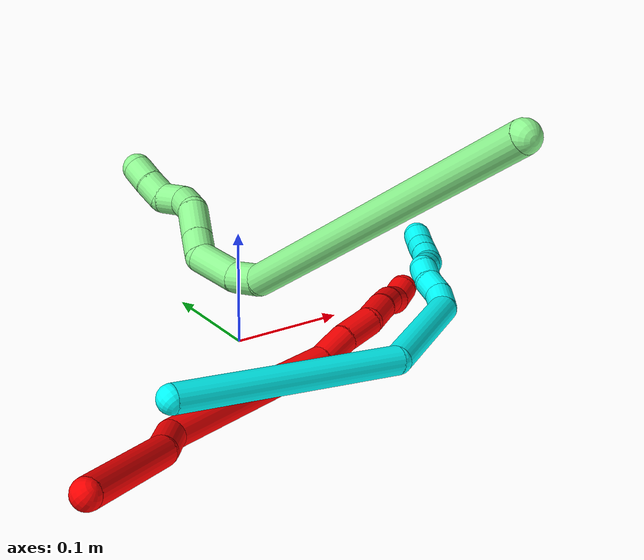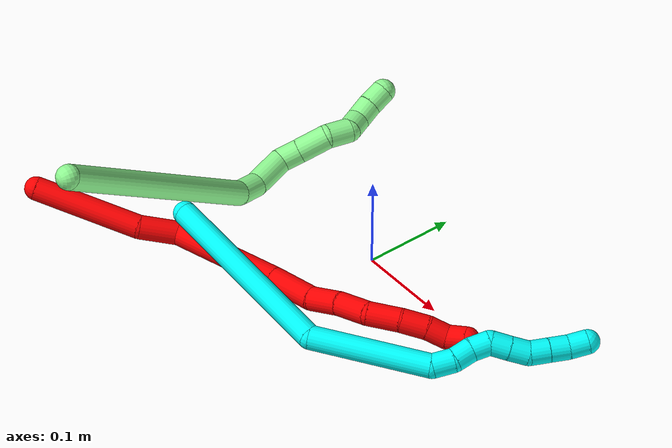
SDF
<sdf version="1.7">
 <world name="default">
  <model name="photoneo_s_sensor">
   <static>1</static>
   <pose>0 0 2 1.57079 1.57079 3.14159</pose>
   <link name="link">
    <inertial><mass>0.1</mass></inertial>
    <sensor name="sensor" type="depth">
     <update_rate>30</update_rate>
     <camera>
      <horizontal_fov>1.22</horizontal_fov>
      <image><width>1920</width><height>1200</height><format>B8G8R8</format></image>
      <clip><near>0.1</near><far>4</far></clip>
      <depth_camera><output>points</output></depth_camera>
     </camera>
     <plugin name="camera_plugin" filename="libgazebo_ros_depth_camera.so">
      <baseline>0.2</baseline>
      <alwaysOn>1</alwaysOn>
      <updateRate>0.0</updateRate>
      <cameraName>camera_ir</cameraName>
      <imageTopicName>/camera/color/image_raw</imageTopicName>
      <cameraInfoTopicName>/camera/color/camera_info</cameraInfoTopicName>
      <depthImageTopicName>/camera/depth/image_raw</depthImageTopicName>
      <depthImageCameraInfoTopicName>/camera/depth/camera_info</depthImageCameraInfoTopicName>
      <pointCloudTopicName>/camera/depth/points</pointCloudTopicName>
      <frameName>fr_optical</frameName>
      <pointCloudCutoff>0.1</pointCloudCutoff>
      <pointCloudCutoffMax>2.0</pointCloudCutoffMax>
      <distortionK1>0</distortionK1>
      <distortionK2>0</distortionK2>
      <distortionK3>0</distortionK3>
      <distortionT1>0</distortionT1>
      <distortionT2>0</distortionT2>
      <CxPrime>0</CxPrime>
      <Cx>0</Cx>
      <Cy>0</Cy>
      <focalLength>0</focalLength>
      <hackBaseline>0</hackBaseline>
     </plugin>
    </sensor>
   </link>
  </model>
  <model name="bin">
   <static>1</static>
   <link name="bottom">
    <collision name="collision-bottom">
     <pose>0 0 -0.01 0 -0 0</pose>
     <geometry><box><size>0.8 0.6 0.02</size></box></geometry>
     <surface>
      <friction><ode><mu>100</mu><mu2>100</mu2></ode></friction>
      <contact><collide_bitmask>65535</collide_bitmask></contact>
     </surface>
    </collision>
   </link>
   <link name="west_wall">
    <collision name="collision-west_wall">
     <pose>-0.41 0 0.1 0 -0 0</pose>
     <geometry><box><size>0.02 0.6 0.2</size></box></geometry>
     <surface>
      <friction><ode><mu>100</mu><mu2>100</mu2></ode></friction>
      <contact><collide_bitmask>65535</collide_bitmask></contact>
     </surface>
    </collision>
   </link>
   <link name="east_wall">
    <collision name="collision-east_wall">
     <pose>0.41 0 0.1 0 -0 0</pose>
     <geometry><box><size>0.02 0.6 0.2</size></box></geometry>
     <surface>
      <friction><ode><mu>100</mu><mu2>100</mu2></ode></friction>
      <contact><collide_bitmask>65535</collide_bitmask></contact>
     </surface>
    </collision>
   </link>
   <link name="south_wall">
    <collision name="collision-south_wall">
     <pose>0 -0.31 0.1 0 -0 0</pose>
     <geometry><box><size>0.8 0.02 0.2</size></box></geometry>
     <surface>
      <friction><ode><mu>100</mu><mu2>100</mu2></ode></friction>
      <contact><collide_bitmask>65535</collide_bitmask></contact>
     </surface>
    </collision>
   </link>
   <link name="north_wall">
    <collision name="collision-north_wall">
     <pose>0 0.31 0.1 0 -0 0</pose>
     <geometry><box><size>0.8 0.02 0.2</size></box></geometry>
     <surface>
      <friction><ode><mu>100</mu><mu2>100</mu2></ode></friction>
      <contact><collide_bitmask>65535</collide_bitmask></contact>
     </surface>
    </collision>
   </link>
  </model>
  <model name="2">
   <static>0</static>
   <link name="2">
    <collision name="collision-cylinder-e_1_1_4">
     <pose>0.051038 0.021755 -0.012881 -2.10537 1.11087 -1.65566</pose>
     <geometry><cylinder><radius>0.0125</radius><length>0.113912</length></cylinder></geometry>
     <surface>
      <friction><ode><mu>1.16</mu><mu2>1.16</mu2><slip1>0</slip1><slip2>0</slip2></ode></friction>
      <contact><ode><kp>1e+06</kp><kd>1</kd><max_vel>0</max_vel><min_depth>0.001</min_depth></ode></contact>
     </surface>
    </collision>
    <visual name="visual-cylinder-e_1_1_4">
     <pose>0.051038 0.021755 -0.012881 -2.10537 1.11087 -1.65566</pose>
     <geometry><cylinder><radius>0.0125</radius><length>0.113912</length></cylinder></geometry>
     <material><ambient>1 0 0 1</ambient></material>
    </visual>
    <collision name="collision-cylinder-e_2_4_5">
     <pose>0.117239 0.054849 -0.034492 -2.22693 0.8143 -1.43912</pose>
     <geometry><cylinder><radius>0.0125</radius><length>0.041701</length></cylinder></geometry>
     <surface>
      <friction><ode><mu>1.16</mu><mu2>1.16</mu2><slip1>0</slip1><slip2>0</slip2></ode></friction>
      <contact><ode><kp>1e+06</kp><kd>1</kd><max_vel>0</max_vel><min_depth>0.001</min_depth></ode></contact>
     </surface>
    </collision>
    <visual name="visual-cylinder-e_2_4_5">
     <pose>0.117239 0.054849 -0.034492 -2.22693 0.8143 -1.43912</pose>
     <geometry><cylinder><radius>0.0125</radius><length>0.041701</length></cylinder></geometry>
     <material><ambient>1 0 0 1</ambient></material>
    </visual>
    <collision name="collision-cylinder-e_3_5_6">
     <pose>0.189767 0.084491 -0.034837 -1.14115 1.23328 -0.853888</pose>
     <geometry><cylinder><radius>0.0125</radius><length>0.121589</length></cylinder></geometry>
     <surface>
      <friction><ode><mu>1.16</mu><mu2>1.16</mu2><slip1>0</slip1><slip2>0</slip2></ode></friction>
      <contact><ode><kp>1e+06</kp><kd>1</kd><max_vel>0</max_vel><min_depth>0.001</min_depth></ode></contact>
     </surface>
    </collision>
    <visual name="visual-cylinder-e_3_5_6">
     <pose>0.189767 0.084491 -0.034837 -1.14115 1.23328 -0.853888</pose>
     <geometry><cylinder><radius>0.0125</radius><length>0.121589</length></cylinder></geometry>
     <material><ambient>1 0 0 1</ambient></material>
    </visual>
    <collision name="collision-cylinder-e_4_6_7">
     <pose>0.270861 0.109356 -0.020272 -0.815536 1.20777 -0.579247</pose>
     <geometry><cylinder><radius>0.0125</radius><length>0.050769</length></cylinder></geometry>
     <surface>
      <friction><ode><mu>1.16</mu><mu2>1.16</mu2><slip1>0</slip1><slip2>0</slip2></ode></friction>
      <contact><ode><kp>1e+06</kp><kd>1</kd><max_vel>0</max_vel><min_depth>0.001</min_depth></ode></contact>
     </surface>
    </collision>
    <visual name="visual-cylinder-e_4_6_7">
     <pose>0.270861 0.109356 -0.020272 -0.815536 1.20777 -0.579247</pose>
     <geometry><cylinder><radius>0.0125</radius><length>0.050769</length></cylinder></geometry>
     <material><ambient>1 0 0 1</ambient></material>
    </visual>
    <collision name="collision-cylinder-e_5_7_8">
     <pose>0.308467 0.124209 -0.010072 -1.11916 0.984626 -0.648223</pose>
     <geometry><cylinder><radius>0.0125</radius><length>0.033314</length></cylinder></geometry>
     <surface>
      <friction><ode><mu>1.16</mu><mu2>1.16</mu2><slip1>0</slip1><slip2>0</slip2></ode></friction>
      <contact><ode><kp>1e+06</kp><kd>1</kd><max_vel>0</max_vel><min_depth>0.001</min_depth></ode></contact>
     </surface>
    </collision>
    <visual name="visual-cylinder-e_5_7_8">
     <pose>0.308467 0.124209 -0.010072 -1.11916 0.984626 -0.648223</pose>
     <geometry><cylinder><radius>0.0125</radius><length>0.033314</length></cylinder></geometry>
     <material><ambient>1 0 0 1</ambient></material>
    </visual>
    <collision name="collision-cylinder-e_6_8_9">
     <pose>0.33784 0.139123 -0.002187 -1.04276 1.11128 -0.685149</pose>
     <geometry><cylinder><radius>0.0125</radius><length>0.03458</length></cylinder></geometry>
     <surface>
      <friction><ode><mu>1.16</mu><mu2>1.16</mu2><slip1>0</slip1><slip2>0</slip2></ode></friction>
      <contact><ode><kp>1e+06</kp><kd>1</kd><max_vel>0</max_vel><min_depth>0.001</min_depth></ode></contact>
     </surface>
    </collision>
    <visual name="visual-cylinder-e_6_8_9">
     <pose>0.33784 0.139123 -0.002187 -1.04276 1.11128 -0.685149</pose>
     <geometry><cylinder><radius>0.0125</radius><length>0.03458</length></cylinder></geometry>
     <material><ambient>1 0 0 1</ambient></material>
    </visual>
    <collision name="collision-cylinder-e_7_9_10">
     <pose>0.367597 0.154592 -0.00042 -1.80358 1.00335 -1.213</pose>
     <geometry><cylinder><radius>0.0125</radius><length>0.033823</length></cylinder></geometry>
     <surface>
      <friction><ode><mu>1.16</mu><mu2>1.16</mu2><slip1>0</slip1><slip2>0</slip2></ode></friction>
      <contact><ode><kp>1e+06</kp><kd>1</kd><max_vel>0</max_vel><min_depth>0.001</min_depth></ode></contact>
     </surface>
    </collision>
    <visual name="visual-cylinder-e_7_9_10">
     <pose>0.367597 0.154592 -0.00042 -1.80358 1.00335 -1.213</pose>
     <geometry><cylinder><radius>0.0125</radius><length>0.033823</length></cylinder></geometry>
     <material><ambient>1 0 0 1</ambient></material>
    </visual>
    <collision name="collision-cylinder-e_8_10_11">
     <pose>0.393472 0.169725 -0.006342 -2.1172 1.00586 -1.54899</pose>
     <geometry><cylinder><radius>0.0125</radius><length>0.0275</length></cylinder></geometry>
     <surface>
      <friction><ode><mu>1.16</mu><mu2>1.16</mu2><slip1>0</slip1><slip2>0</slip2></ode></friction>
      <contact><ode><kp>1e+06</kp><kd>1</kd><max_vel>0</max_vel><min_depth>0.001</min_depth></ode></contact>
     </surface>
    </collision>
    <visual name="visual-cylinder-e_8_10_11">
     <pose>0.393472 0.169725 -0.006342 -2.1172 1.00586 -1.54899</pose>
     <geometry><cylinder><radius>0.0125</radius><length>0.0275</length></cylinder></geometry>
     <material><ambient>1 0 0 1</ambient></material>
    </visual>
    <collision name="collision-cylinder-e_9_11_12">
     <pose>0.414726 0.179227 -0.014087 -2.45511 1.08681 -2.0731</pose>
     <geometry><cylinder><radius>0.0125</radius><length>0.021784</length></cylinder></geometry>
     <surface>
      <friction><ode><mu>1.16</mu><mu2>1.16</mu2><slip1>0</slip1><slip2>0</slip2></ode></friction>
      <contact><ode><kp>1e+06</kp><kd>1</kd><max_vel>0</max_vel><min_depth>0.001</min_depth></ode></contact>
     </surface>
    </collision>
    <visual name="visual-cylinder-e_9_11_12">
     <pose>0.414726 0.179227 -0.014087 -2.45511 1.08681 -2.0731</pose>
     <geometry><cylinder><radius>0.0125</radius><length>0.021784</length></cylinder></geometry>
     <material><ambient>1 0 0 1</ambient></material>
    </visual>
    <collision name="collision-cylinder-e_10_12_2">
     <pose>0.432804 0.188702 -0.017623 -1.50954 0.931354 -0.883074</pose>
     <geometry><cylinder><radius>0.0125</radius><length>0.021029</length></cylinder></geometry>
     <surface>
      <friction><ode><mu>1.16</mu><mu2>1.16</mu2><slip1>0</slip1><slip2>0</slip2></ode></friction>
      <contact><ode><kp>1e+06</kp><kd>1</kd><max_vel>0</max_vel><min_depth>0.001</min_depth></ode></contact>
     </surface>
    </collision>
    <visual name="visual-cylinder-e_10_12_2">
     <pose>0.432804 0.188702 -0.017623 -1.50954 0.931354 -0.883074</pose>
     <geometry><cylinder><radius>0.0125</radius><length>0.021029</length></cylinder></geometry>
     <material><ambient>1 0 0 1</ambient></material>
    </visual>
    <collision name="collision-sphere-2">
     <pose>0.441241 0.194965 -0.017239 0 -0 0</pose>
     <geometry><sphere><radius>0.0125</radius></sphere></geometry>
     <surface>
      <friction><ode><mu>1.16</mu><mu2>1.16</mu2><slip1>0</slip1><slip2>0</slip2></ode></friction>
      <contact><ode><kp>1e+06</kp><kd>1</kd><max_vel>0</max_vel><min_depth>0.001</min_depth></ode></contact>
     </surface>
    </collision>
    <visual name="visual-sphere-2">
     <pose>0.441241 0.194965 -0.017239 0 -0 0</pose>
     <geometry><sphere><radius>0.0125</radius></sphere></geometry>
     <material><ambient>1 0 0 1</ambient></material>
    </visual>
    <collision name="collision-sphere-12">
     <pose>0.424367 0.182439 -0.018007 0 -0 0</pose>
     <geometry><sphere><radius>0.0125</radius></sphere></geometry>
     <surface>
      <friction><ode><mu>1.16</mu><mu2>1.16</mu2><slip1>0</slip1><slip2>0</slip2></ode></friction>
      <contact><ode><kp>1e+06</kp><kd>1</kd><max_vel>0</max_vel><min_depth>0.001</min_depth></ode></contact>
     </surface>
    </collision>
    <visual name="visual-sphere-12">
     <pose>0.424367 0.182439 -0.018007 0 -0 0</pose>
     <geometry><sphere><radius>0.0125</radius></sphere></geometry>
     <material><ambient>1 0 0 1</ambient></material>
    </visual>
    <collision name="collision-sphere-11">
     <pose>0.405085 0.176015 -0.010167 0 -0 0</pose>
     <geometry><sphere><radius>0.0125</radius></sphere></geometry>
     <surface>
      <friction><ode><mu>1.16</mu><mu2>1.16</mu2><slip1>0</slip1><slip2>0</slip2></ode></friction>
      <contact><ode><kp>1e+06</kp><kd>1</kd><max_vel>0</max_vel><min_depth>0.001</min_depth></ode></contact>
     </surface>
    </collision>
    <visual name="visual-sphere-11">
     <pose>0.405085 0.176015 -0.010167 0 -0 0</pose>
     <geometry><sphere><radius>0.0125</radius></sphere></geometry>
     <material><ambient>1 0 0 1</ambient></material>
    </visual>
    <collision name="collision-sphere-10">
     <pose>0.381858 0.163436 -0.002517 0 -0 0</pose>
     <geometry><sphere><radius>0.0125</radius></sphere></geometry>
     <surface>
      <friction><ode><mu>1.16</mu><mu2>1.16</mu2><slip1>0</slip1><slip2>0</slip2></ode></friction>
      <contact><ode><kp>1e+06</kp><kd>1</kd><max_vel>0</max_vel><min_depth>0.001</min_depth></ode></contact>
     </surface>
    </collision>
    <visual name="visual-sphere-10">
     <pose>0.381858 0.163436 -0.002517 0 -0 0</pose>
     <geometry><sphere><radius>0.0125</radius></sphere></geometry>
     <material><ambient>1 0 0 1</ambient></material>
    </visual>
    <collision name="collision-sphere-9">
     <pose>0.353336 0.145747 0.001677 0 -0 0</pose>
     <geometry><sphere><radius>0.0125</radius></sphere></geometry>
     <surface>
      <friction><ode><mu>1.16</mu><mu2>1.16</mu2><slip1>0</slip1><slip2>0</slip2></ode></friction>
      <contact><ode><kp>1e+06</kp><kd>1</kd><max_vel>0</max_vel><min_depth>0.001</min_depth></ode></contact>
     </surface>
    </collision>
    <visual name="visual-sphere-9">
     <pose>0.353336 0.145747 0.001677 0 -0 0</pose>
     <geometry><sphere><radius>0.0125</radius></sphere></geometry>
     <material><ambient>1 0 0 1</ambient></material>
    </visual>
    <collision name="collision-sphere-4">
     <pose>0.102075 0.043509 -0.025761 0 -0 0</pose>
     <geometry><sphere><radius>0.0125</radius></sphere></geometry>
     <surface>
      <friction><ode><mu>1.16</mu><mu2>1.16</mu2><slip1>0</slip1><slip2>0</slip2></ode></friction>
      <contact><ode><kp>1e+06</kp><kd>1</kd><max_vel>0</max_vel><min_depth>0.001</min_depth></ode></contact>
     </surface>
    </collision>
    <visual name="visual-sphere-4">
     <pose>0.102075 0.043509 -0.025761 0 -0 0</pose>
     <geometry><sphere><radius>0.0125</radius></sphere></geometry>
     <material><ambient>1 0 0 1</ambient></material>
    </visual>
    <collision name="collision-sphere-1">
     <geometry><sphere><radius>0.0125</radius></sphere></geometry>
     <surface>
      <friction><ode><mu>1.16</mu><mu2>1.16</mu2><slip1>0</slip1><slip2>0</slip2></ode></friction>
      <contact><ode><kp>1e+06</kp><kd>1</kd><max_vel>0</max_vel><min_depth>0.001</min_depth></ode></contact>
     </surface>
    </collision>
    <visual name="visual-sphere-1">
     <geometry><sphere><radius>0.0125</radius></sphere></geometry>
     <material><ambient>1 0 0 1</ambient></material>
    </visual>
    <collision name="collision-sphere-8">
     <pose>0.322344 0.132499 -0.00605 0 -0 0</pose>
     <geometry><sphere><radius>0.0125</radius></sphere></geometry>
     <surface>
      <friction><ode><mu>1.16</mu><mu2>1.16</mu2><slip1>0</slip1><slip2>0</slip2></ode></friction>
      <contact><ode><kp>1e+06</kp><kd>1</kd><max_vel>0</max_vel><min_depth>0.001</min_depth></ode></contact>
     </surface>
    </collision>
    <visual name="visual-sphere-8">
     <pose>0.322344 0.132499 -0.00605 0 -0 0</pose>
     <geometry><sphere><radius>0.0125</radius></sphere></geometry>
     <material><ambient>1 0 0 1</ambient></material>
    </visual>
    <collision name="collision-sphere-5">
     <pose>0.132402 0.066189 -0.043223 0 -0 0</pose>
     <geometry><sphere><radius>0.0125</radius></sphere></geometry>
     <surface>
      <friction><ode><mu>1.16</mu><mu2>1.16</mu2><slip1>0</slip1><slip2>0</slip2></ode></friction>
      <contact><ode><kp>1e+06</kp><kd>1</kd><max_vel>0</max_vel><min_depth>0.001</min_depth></ode></contact>
     </surface>
    </collision>
    <visual name="visual-sphere-5">
     <pose>0.132402 0.066189 -0.043223 0 -0 0</pose>
     <geometry><sphere><radius>0.0125</radius></sphere></geometry>
     <material><ambient>1 0 0 1</ambient></material>
    </visual>
    <collision name="collision-sphere-6">
     <pose>0.247132 0.102793 -0.026451 0 -0 0</pose>
     <geometry><sphere><radius>0.0125</radius></sphere></geometry>
     <surface>
      <friction><ode><mu>1.16</mu><mu2>1.16</mu2><slip1>0</slip1><slip2>0</slip2></ode></friction>
      <contact><ode><kp>1e+06</kp><kd>1</kd><max_vel>0</max_vel><min_depth>0.001</min_depth></ode></contact>
     </surface>
    </collision>
    <visual name="visual-sphere-6">
     <pose>0.247132 0.102793 -0.026451 0 -0 0</pose>
     <geometry><sphere><radius>0.0125</radius></sphere></geometry>
     <material><ambient>1 0 0 1</ambient></material>
    </visual>
    <collision name="collision-sphere-7">
     <pose>0.294591 0.115919 -0.014093 0 -0 0</pose>
     <geometry><sphere><radius>0.0125</radius></sphere></geometry>
     <surface>
      <friction><ode><mu>1.16</mu><mu2>1.16</mu2><slip1>0</slip1><slip2>0</slip2></ode></friction>
      <contact><ode><kp>1e+06</kp><kd>1</kd><max_vel>0</max_vel><min_depth>0.001</min_depth></ode></contact>
     </surface>
    </collision>
    <visual name="visual-sphere-7">
     <pose>0.294591 0.115919 -0.014093 0 -0 0</pose>
     <geometry><sphere><radius>0.0125</radius></sphere></geometry>
     <material><ambient>1 0 0 1</ambient></material>
    </visual>
    <inertial>
     <pose>0.221751 0.094615 -0.018896 0 -0 0</pose>
     <mass>0.5</mass>
     <inertia>
      <ixx>-3.8e-05</ixx>
      <ixy>0</ixy>
      <ixz>0</ixz>
      <iyy>0.000182</iyy>
      <iyz>0</iyz>
      <izz>-0.000408</izz>
     </inertia>
    </inertial>
   </link>
   <pose>-0.262794 -0.232049 0.0442 0.691614 0.310391 0.131149</pose>
  </model>
  <model name="3">
   <static>0</static>
   <link name="3">
    <collision name="collision-cylinder-e_1_1_4">
     <pose>0.102409 0.013151 -0.023422 -2.62996 1.31428 -2.48792</pose>
     <geometry><cylinder><radius>0.0125</radius><length>0.211746</length></cylinder></geometry>
     <surface>
      <friction><ode><mu>1.16</mu><mu2>1.16</mu2><slip1>0</slip1><slip2>0</slip2></ode></friction>
      <contact><ode><kp>1e+06</kp><kd>1</kd><max_vel>0</max_vel><min_depth>0.001</min_depth></ode></contact>
     </surface>
    </collision>
    <visual name="visual-cylinder-e_1_1_4">
     <pose>0.102409 0.013151 -0.023422 -2.62996 1.31428 -2.48792</pose>
     <geometry><cylinder><radius>0.0125</radius><length>0.211746</length></cylinder></geometry>
     <material><ambient>0.003922 1 0.996078 1</ambient></material>
    </visual>
    <collision name="collision-cylinder-e_2_4_5">
     <pose>0.259728 0.047985 -0.025306 -0.788744 1.06293 -0.479899</pose>
     <geometry><cylinder><radius>0.0125</radius><length>0.125685</length></cylinder></geometry>
     <surface>
      <friction><ode><mu>1.16</mu><mu2>1.16</mu2><slip1>0</slip1><slip2>0</slip2></ode></friction>
      <contact><ode><kp>1e+06</kp><kd>1</kd><max_vel>0</max_vel><min_depth>0.001</min_depth></ode></contact>
     </surface>
    </collision>
    <visual name="visual-cylinder-e_2_4_5">
     <pose>0.259728 0.047985 -0.025306 -0.788744 1.06293 -0.479899</pose>
     <geometry><cylinder><radius>0.0125</radius><length>0.125685</length></cylinder></geometry>
     <material><ambient>0.003922 1 0.996078 1</ambient></material>
    </visual>
    <collision name="collision-cylinder-e_3_5_6">
     <pose>0.32103 0.072753 0.004861 -0.343439 0.608969 -0.108894</pose>
     <geometry><cylinder><radius>0.0125</radius><length>0.022344</length></cylinder></geometry>
     <surface>
      <friction><ode><mu>1.16</mu><mu2>1.16</mu2><slip1>0</slip1><slip2>0</slip2></ode></friction>
      <contact><ode><kp>1e+06</kp><kd>1</kd><max_vel>0</max_vel><min_depth>0.001</min_depth></ode></contact>
     </surface>
    </collision>
    <visual name="visual-cylinder-e_3_5_6">
     <pose>0.32103 0.072753 0.004861 -0.343439 0.608969 -0.108894</pose>
     <geometry><cylinder><radius>0.0125</radius><length>0.022344</length></cylinder></geometry>
     <material><ambient>0.003922 1 0.996078 1</ambient></material>
    </visual>
    <collision name="collision-cylinder-e_4_6_7">
     <pose>0.330185 0.078231 0.022903 -0.248912 0.277279 -0.034909</pose>
     <geometry><cylinder><radius>0.0125</radius><length>0.020198</length></cylinder></geometry>
     <surface>
      <friction><ode><mu>1.16</mu><mu2>1.16</mu2><slip1>0</slip1><slip2>0</slip2></ode></friction>
      <contact><ode><kp>1e+06</kp><kd>1</kd><max_vel>0</max_vel><min_depth>0.001</min_depth></ode></contact>
     </surface>
    </collision>
    <visual name="visual-cylinder-e_4_6_7">
     <pose>0.330185 0.078231 0.022903 -0.248912 0.277279 -0.034909</pose>
     <geometry><cylinder><radius>0.0125</radius><length>0.020198</length></cylinder></geometry>
     <material><ambient>0.003922 1 0.996078 1</ambient></material>
    </visual>
    <collision name="collision-cylinder-e_5_7_8">
     <pose>0.33811 0.083001 0.040551 -0.280981 0.542033 -0.078549</pose>
     <geometry><cylinder><radius>0.0125</radius><length>0.020008</length></cylinder></geometry>
     <surface>
      <friction><ode><mu>1.16</mu><mu2>1.16</mu2><slip1>0</slip1><slip2>0</slip2></ode></friction>
      <contact><ode><kp>1e+06</kp><kd>1</kd><max_vel>0</max_vel><min_depth>0.001</min_depth></ode></contact>
     </surface>
    </collision>
    <visual name="visual-cylinder-e_5_7_8">
     <pose>0.33811 0.083001 0.040551 -0.280981 0.542033 -0.078549</pose>
     <geometry><cylinder><radius>0.0125</radius><length>0.020008</length></cylinder></geometry>
     <material><ambient>0.003922 1 0.996078 1</ambient></material>
    </visual>
    <collision name="collision-cylinder-e_6_8_9">
     <pose>0.350763 0.091016 0.052265 -1.01782 0.846617 -0.492543</pose>
     <geometry><cylinder><radius>0.0125</radius><length>0.020003</length></cylinder></geometry>
     <surface>
      <friction><ode><mu>1.16</mu><mu2>1.16</mu2><slip1>0</slip1><slip2>0</slip2></ode></friction>
      <contact><ode><kp>1e+06</kp><kd>1</kd><max_vel>0</max_vel><min_depth>0.001</min_depth></ode></contact>
     </surface>
    </collision>
    <visual name="visual-cylinder-e_6_8_9">
     <pose>0.350763 0.091016 0.052265 -1.01782 0.846617 -0.492543</pose>
     <geometry><cylinder><radius>0.0125</radius><length>0.020003</length></cylinder></geometry>
     <material><ambient>0.003922 1 0.996078 1</ambient></material>
    </visual>
    <collision name="collision-cylinder-e_7_9_10">
     <pose>0.365393 0.102513 0.059582 -0.990899 0.79502 -0.446237</pose>
     <geometry><cylinder><radius>0.0125</radius><length>0.020002</length></cylinder></geometry>
     <surface>
      <friction><ode><mu>1.16</mu><mu2>1.16</mu2><slip1>0</slip1><slip2>0</slip2></ode></friction>
      <contact><ode><kp>1e+06</kp><kd>1</kd><max_vel>0</max_vel><min_depth>0.001</min_depth></ode></contact>
     </surface>
    </collision>
    <visual name="visual-cylinder-e_7_9_10">
     <pose>0.365393 0.102513 0.059582 -0.990899 0.79502 -0.446237</pose>
     <geometry><cylinder><radius>0.0125</radius><length>0.020002</length></cylinder></geometry>
     <material><ambient>0.003922 1 0.996078 1</ambient></material>
    </visual>
    <collision name="collision-cylinder-e_8_10_11">
     <pose>0.378138 0.112495 0.070605 -0.521089 0.594824 -0.163068</pose>
     <geometry><cylinder><radius>0.0125</radius><length>0.020004</length></cylinder></geometry>
     <surface>
      <friction><ode><mu>1.16</mu><mu2>1.16</mu2><slip1>0</slip1><slip2>0</slip2></ode></friction>
      <contact><ode><kp>1e+06</kp><kd>1</kd><max_vel>0</max_vel><min_depth>0.001</min_depth></ode></contact>
     </surface>
    </collision>
    <visual name="visual-cylinder-e_8_10_11">
     <pose>0.378138 0.112495 0.070605 -0.521089 0.594824 -0.163068</pose>
     <geometry><cylinder><radius>0.0125</radius><length>0.020004</length></cylinder></geometry>
     <material><ambient>0.003922 1 0.996078 1</ambient></material>
    </visual>
    <collision name="collision-cylinder-e_9_11_12">
     <pose>0.38919 0.120988 0.084954 -0.547556 0.575788 -0.165937</pose>
     <geometry><cylinder><radius>0.0125</radius><length>0.020008</length></cylinder></geometry>
     <surface>
      <friction><ode><mu>1.16</mu><mu2>1.16</mu2><slip1>0</slip1><slip2>0</slip2></ode></friction>
      <contact><ode><kp>1e+06</kp><kd>1</kd><max_vel>0</max_vel><min_depth>0.001</min_depth></ode></contact>
     </surface>
    </collision>
    <visual name="visual-cylinder-e_9_11_12">
     <pose>0.38919 0.120988 0.084954 -0.547556 0.575788 -0.165937</pose>
     <geometry><cylinder><radius>0.0125</radius><length>0.020008</length></cylinder></geometry>
     <material><ambient>0.003922 1 0.996078 1</ambient></material>
    </visual>
    <collision name="collision-cylinder-e_10_12_2">
     <pose>0.400138 0.128344 0.099918 -0.365836 0.58238 -0.11077</pose>
     <geometry><cylinder><radius>0.0125</radius><length>0.020002</length></cylinder></geometry>
     <surface>
      <friction><ode><mu>1.16</mu><mu2>1.16</mu2><slip1>0</slip1><slip2>0</slip2></ode></friction>
      <contact><ode><kp>1e+06</kp><kd>1</kd><max_vel>0</max_vel><min_depth>0.001</min_depth></ode></contact>
     </surface>
    </collision>
    <visual name="visual-cylinder-e_10_12_2">
     <pose>0.400138 0.128344 0.099918 -0.365836 0.58238 -0.11077</pose>
     <geometry><cylinder><radius>0.0125</radius><length>0.020002</length></cylinder></geometry>
     <material><ambient>0.003922 1 0.996078 1</ambient></material>
    </visual>
    <collision name="collision-sphere-2">
     <pose>0.405638 0.131332 0.107717 0 -0 0</pose>
     <geometry><sphere><radius>0.0125</radius></sphere></geometry>
     <surface>
      <friction><ode><mu>1.16</mu><mu2>1.16</mu2><slip1>0</slip1><slip2>0</slip2></ode></friction>
      <contact><ode><kp>1e+06</kp><kd>1</kd><max_vel>0</max_vel><min_depth>0.001</min_depth></ode></contact>
     </surface>
    </collision>
    <visual name="visual-sphere-2">
     <pose>0.405638 0.131332 0.107717 0 -0 0</pose>
     <geometry><sphere><radius>0.0125</radius></sphere></geometry>
     <material><ambient>0.003922 1 0.996078 1</ambient></material>
    </visual>
    <collision name="collision-sphere-12">
     <pose>0.394637 0.125356 0.092118 0 -0 0</pose>
     <geometry><sphere><radius>0.0125</radius></sphere></geometry>
     <surface>
      <friction><ode><mu>1.16</mu><mu2>1.16</mu2><slip1>0</slip1><slip2>0</slip2></ode></friction>
      <contact><ode><kp>1e+06</kp><kd>1</kd><max_vel>0</max_vel><min_depth>0.001</min_depth></ode></contact>
     </surface>
    </collision>
    <visual name="visual-sphere-12">
     <pose>0.394637 0.125356 0.092118 0 -0 0</pose>
     <geometry><sphere><radius>0.0125</radius></sphere></geometry>
     <material><ambient>0.003922 1 0.996078 1</ambient></material>
    </visual>
    <collision name="collision-sphere-11">
     <pose>0.383743 0.116619 0.077789 0 -0 0</pose>
     <geometry><sphere><radius>0.0125</radius></sphere></geometry>
     <surface>
      <friction><ode><mu>1.16</mu><mu2>1.16</mu2><slip1>0</slip1><slip2>0</slip2></ode></friction>
      <contact><ode><kp>1e+06</kp><kd>1</kd><max_vel>0</max_vel><min_depth>0.001</min_depth></ode></contact>
     </surface>
    </collision>
    <visual name="visual-sphere-11">
     <pose>0.383743 0.116619 0.077789 0 -0 0</pose>
     <geometry><sphere><radius>0.0125</radius></sphere></geometry>
     <material><ambient>0.003922 1 0.996078 1</ambient></material>
    </visual>
    <collision name="collision-sphere-10">
     <pose>0.372533 0.108371 0.06342 0 -0 0</pose>
     <geometry><sphere><radius>0.0125</radius></sphere></geometry>
     <surface>
      <friction><ode><mu>1.16</mu><mu2>1.16</mu2><slip1>0</slip1><slip2>0</slip2></ode></friction>
      <contact><ode><kp>1e+06</kp><kd>1</kd><max_vel>0</max_vel><min_depth>0.001</min_depth></ode></contact>
     </surface>
    </collision>
    <visual name="visual-sphere-10">
     <pose>0.372533 0.108371 0.06342 0 -0 0</pose>
     <geometry><sphere><radius>0.0125</radius></sphere></geometry>
     <material><ambient>0.003922 1 0.996078 1</ambient></material>
    </visual>
    <collision name="collision-sphere-9">
     <pose>0.358254 0.096654 0.055745 0 -0 0</pose>
     <geometry><sphere><radius>0.0125</radius></sphere></geometry>
     <surface>
      <friction><ode><mu>1.16</mu><mu2>1.16</mu2><slip1>0</slip1><slip2>0</slip2></ode></friction>
      <contact><ode><kp>1e+06</kp><kd>1</kd><max_vel>0</max_vel><min_depth>0.001</min_depth></ode></contact>
     </surface>
    </collision>
    <visual name="visual-sphere-9">
     <pose>0.358254 0.096654 0.055745 0 -0 0</pose>
     <geometry><sphere><radius>0.0125</radius></sphere></geometry>
     <material><ambient>0.003922 1 0.996078 1</ambient></material>
    </visual>
    <collision name="collision-sphere-4">
     <pose>0.204817 0.026303 -0.046844 0 -0 0</pose>
     <geometry><sphere><radius>0.0125</radius></sphere></geometry>
     <surface>
      <friction><ode><mu>1.16</mu><mu2>1.16</mu2><slip1>0</slip1><slip2>0</slip2></ode></friction>
      <contact><ode><kp>1e+06</kp><kd>1</kd><max_vel>0</max_vel><min_depth>0.001</min_depth></ode></contact>
     </surface>
    </collision>
    <visual name="visual-sphere-4">
     <pose>0.204817 0.026303 -0.046844 0 -0 0</pose>
     <geometry><sphere><radius>0.0125</radius></sphere></geometry>
     <material><ambient>0.003922 1 0.996078 1</ambient></material>
    </visual>
    <collision name="collision-sphere-1">
     <geometry><sphere><radius>0.0125</radius></sphere></geometry>
     <surface>
      <friction><ode><mu>1.16</mu><mu2>1.16</mu2><slip1>0</slip1><slip2>0</slip2></ode></friction>
      <contact><ode><kp>1e+06</kp><kd>1</kd><max_vel>0</max_vel><min_depth>0.001</min_depth></ode></contact>
     </surface>
    </collision>
    <visual name="visual-sphere-1">
     <geometry><sphere><radius>0.0125</radius></sphere></geometry>
     <material><ambient>0.003922 1 0.996078 1</ambient></material>
    </visual>
    <collision name="collision-sphere-8">
     <pose>0.343271 0.085377 0.048785 0 -0 0</pose>
     <geometry><sphere><radius>0.0125</radius></sphere></geometry>
     <surface>
      <friction><ode><mu>1.16</mu><mu2>1.16</mu2><slip1>0</slip1><slip2>0</slip2></ode></friction>
      <contact><ode><kp>1e+06</kp><kd>1</kd><max_vel>0</max_vel><min_depth>0.001</min_depth></ode></contact>
     </surface>
    </collision>
    <visual name="visual-sphere-8">
     <pose>0.343271 0.085377 0.048785 0 -0 0</pose>
     <geometry><sphere><radius>0.0125</radius></sphere></geometry>
     <material><ambient>0.003922 1 0.996078 1</ambient></material>
    </visual>
    <collision name="collision-sphere-5">
     <pose>0.314639 0.069667 -0.003768 0 -0 0</pose>
     <geometry><sphere><radius>0.0125</radius></sphere></geometry>
     <surface>
      <friction><ode><mu>1.16</mu><mu2>1.16</mu2><slip1>0</slip1><slip2>0</slip2></ode></friction>
      <contact><ode><kp>1e+06</kp><kd>1</kd><max_vel>0</max_vel><min_depth>0.001</min_depth></ode></contact>
     </surface>
    </collision>
    <visual name="visual-sphere-5">
     <pose>0.314639 0.069667 -0.003768 0 -0 0</pose>
     <geometry><sphere><radius>0.0125</radius></sphere></geometry>
     <material><ambient>0.003922 1 0.996078 1</ambient></material>
    </visual>
    <collision name="collision-sphere-6">
     <pose>0.327421 0.075839 0.013489 0 -0 0</pose>
     <geometry><sphere><radius>0.0125</radius></sphere></geometry>
     <surface>
      <friction><ode><mu>1.16</mu><mu2>1.16</mu2><slip1>0</slip1><slip2>0</slip2></ode></friction>
      <contact><ode><kp>1e+06</kp><kd>1</kd><max_vel>0</max_vel><min_depth>0.001</min_depth></ode></contact>
     </surface>
    </collision>
    <visual name="visual-sphere-6">
     <pose>0.327421 0.075839 0.013489 0 -0 0</pose>
     <geometry><sphere><radius>0.0125</radius></sphere></geometry>
     <material><ambient>0.003922 1 0.996078 1</ambient></material>
    </visual>
    <collision name="collision-sphere-7">
     <pose>0.33295 0.080624 0.032317 0 -0 0</pose>
     <geometry><sphere><radius>0.0125</radius></sphere></geometry>
     <surface>
      <friction><ode><mu>1.16</mu><mu2>1.16</mu2><slip1>0</slip1><slip2>0</slip2></ode></friction>
      <contact><ode><kp>1e+06</kp><kd>1</kd><max_vel>0</max_vel><min_depth>0.001</min_depth></ode></contact>
     </surface>
    </collision>
    <visual name="visual-sphere-7">
     <pose>0.33295 0.080624 0.032317 0 -0 0</pose>
     <geometry><sphere><radius>0.0125</radius></sphere></geometry>
     <material><ambient>0.003922 1 0.996078 1</ambient></material>
    </visual>
    <inertial>
     <pose>0.225231 0.049583 0.001181 0 -0 0</pose>
     <mass>0.5</mass>
     <inertia>
      <ixx>-0.00021</ixx>
      <ixy>0</ixy>
      <ixz>0</ixz>
      <iyy>0.000797</iyy>
      <iyz>0</iyz>
      <izz>-0.001083</izz>
     </inertia>
    </inertial>
   </link>
   <pose>-0.140844 -0.131951 0.039037 -1.07999 -0.115763 0.120416</pose>
  </model>
  <model name="13">
   <static>0</static>
   <link name="13">
    <collision name="collision-cylinder-e_1_1_4">
     <pose>-0.080917 0.034271 -0.118368 -2.85977 -0.581027 2.25556</pose>
     <geometry><cylinder><radius>0.0125</radius><length>0.294842</length></cylinder></geometry>
     <surface>
      <friction><ode><mu>1.16</mu><mu2>1.16</mu2><slip1>0</slip1><slip2>0</slip2></ode></friction>
      <contact><ode><kp>1e+06</kp><kd>1</kd><max_vel>0</max_vel><min_depth>0.001</min_depth></ode></contact>
     </surface>
    </collision>
    <visual name="visual-cylinder-e_1_1_4">
     <pose>-0.080917 0.034271 -0.118368 -2.85977 -0.581027 2.25556</pose>
     <geometry><cylinder><radius>0.0125</radius><length>0.294842</length></cylinder></geometry>
     <material><ambient>0.564706 0.984314 0.572549 1</ambient></material>
    </visual>
    <collision name="collision-cylinder-e_2_4_5">
     <pose>-0.163997 0.072393 -0.249546 -2.84958 -0.160354 1.00014</pose>
     <geometry><cylinder><radius>0.0125</radius><length>0.027101</length></cylinder></geometry>
     <surface>
      <friction><ode><mu>1.16</mu><mu2>1.16</mu2><slip1>0</slip1><slip2>0</slip2></ode></friction>
      <contact><ode><kp>1e+06</kp><kd>1</kd><max_vel>0</max_vel><min_depth>0.001</min_depth></ode></contact>
     </surface>
    </collision>
    <visual name="visual-cylinder-e_2_4_5">
     <pose>-0.163997 0.072393 -0.249546 -2.84958 -0.160354 1.00014</pose>
     <geometry><cylinder><radius>0.0125</radius><length>0.027101</length></cylinder></geometry>
     <material><ambient>0.564706 0.984314 0.572549 1</ambient></material>
    </visual>
    <collision name="collision-cylinder-e_3_5_6">
     <pose>-0.162465 0.082476 -0.280723 -2.81447 0.188307 -1.03946</pose>
     <geometry><cylinder><radius>0.0125</radius><length>0.039487</length></cylinder></geometry>
     <surface>
      <friction><ode><mu>1.16</mu><mu2>1.16</mu2><slip1>0</slip1><slip2>0</slip2></ode></friction>
      <contact><ode><kp>1e+06</kp><kd>1</kd><max_vel>0</max_vel><min_depth>0.001</min_depth></ode></contact>
     </surface>
    </collision>
    <visual name="visual-cylinder-e_3_5_6">
     <pose>-0.162465 0.082476 -0.280723 -2.81447 0.188307 -1.03946</pose>
     <geometry><cylinder><radius>0.0125</radius><length>0.039487</length></cylinder></geometry>
     <material><ambient>0.564706 0.984314 0.572549 1</ambient></material>
    </visual>
    <collision name="collision-cylinder-e_4_6_7">
     <pose>-0.15418 0.085667 -0.308369 2.82495 0.439309 1.89998</pose>
     <geometry><cylinder><radius>0.0125</radius><length>0.02158</length></cylinder></geometry>
     <surface>
      <friction><ode><mu>1.16</mu><mu2>1.16</mu2><slip1>0</slip1><slip2>0</slip2></ode></friction>
      <contact><ode><kp>1e+06</kp><kd>1</kd><max_vel>0</max_vel><min_depth>0.001</min_depth></ode></contact>
     </surface>
    </collision>
    <visual name="visual-cylinder-e_4_6_7">
     <pose>-0.15418 0.085667 -0.308369 2.82495 0.439309 1.89998</pose>
     <geometry><cylinder><radius>0.0125</radius><length>0.02158</length></cylinder></geometry>
     <material><ambient>0.564706 0.984314 0.572549 1</ambient></material>
    </visual>
    <collision name="collision-cylinder-e_5_7_8">
     <pose>-0.142495 0.078092 -0.331013 2.81449 0.465879 1.92608</pose>
     <geometry><cylinder><radius>0.0125</radius><length>0.031591</length></cylinder></geometry>
     <surface>
      <friction><ode><mu>1.16</mu><mu2>1.16</mu2><slip1>0</slip1><slip2>0</slip2></ode></friction>
      <contact><ode><kp>1e+06</kp><kd>1</kd><max_vel>0</max_vel><min_depth>0.001</min_depth></ode></contact>
     </surface>
    </collision>
    <visual name="visual-cylinder-e_5_7_8">
     <pose>-0.142495 0.078092 -0.331013 2.81449 0.465879 1.92608</pose>
     <geometry><cylinder><radius>0.0125</radius><length>0.031591</length></cylinder></geometry>
     <material><ambient>0.564706 0.984314 0.572549 1</ambient></material>
    </visual>
    <collision name="collision-cylinder-e_6_8_9">
     <pose>-0.134885 0.071785 -0.356461 2.99598 0.042057 0.561476</pose>
     <geometry><cylinder><radius>0.0125</radius><length>0.024449</length></cylinder></geometry>
     <surface>
      <friction><ode><mu>1.16</mu><mu2>1.16</mu2><slip1>0</slip1><slip2>0</slip2></ode></friction>
      <contact><ode><kp>1e+06</kp><kd>1</kd><max_vel>0</max_vel><min_depth>0.001</min_depth></ode></contact>
     </surface>
    </collision>
    <visual name="visual-cylinder-e_6_8_9">
     <pose>-0.134885 0.071785 -0.356461 2.99598 0.042057 0.561476</pose>
     <geometry><cylinder><radius>0.0125</radius><length>0.024449</length></cylinder></geometry>
     <material><ambient>0.564706 0.984314 0.572549 1</ambient></material>
    </visual>
    <collision name="collision-cylinder-e_7_9_10">
     <pose>-0.134712 0.075424 -0.377405 -2.59332 -0.032752 0.116345</pose>
     <geometry><cylinder><radius>0.0125</radius><length>0.020772</length></cylinder></geometry>
     <surface>
      <friction><ode><mu>1.16</mu><mu2>1.16</mu2><slip1>0</slip1><slip2>0</slip2></ode></friction>
      <contact><ode><kp>1e+06</kp><kd>1</kd><max_vel>0</max_vel><min_depth>0.001</min_depth></ode></contact>
     </surface>
    </collision>
    <visual name="visual-cylinder-e_7_9_10">
     <pose>-0.134712 0.075424 -0.377405 -2.59332 -0.032752 0.116345</pose>
     <geometry><cylinder><radius>0.0125</radius><length>0.020772</length></cylinder></geometry>
     <material><ambient>0.564706 0.984314 0.572549 1</ambient></material>
    </visual>
    <collision name="collision-cylinder-e_8_10_11">
     <pose>-0.130431 0.083187 -0.394905 -2.87579 0.476345 -2.13489</pose>
     <geometry><cylinder><radius>0.0125</radius><length>0.020155</length></cylinder></geometry>
     <surface>
      <friction><ode><mu>1.16</mu><mu2>1.16</mu2><slip1>0</slip1><slip2>0</slip2></ode></friction>
      <contact><ode><kp>1e+06</kp><kd>1</kd><max_vel>0</max_vel><min_depth>0.001</min_depth></ode></contact>
     </surface>
    </collision>
    <visual name="visual-cylinder-e_8_10_11">
     <pose>-0.130431 0.083187 -0.394905 -2.87579 0.476345 -2.13489</pose>
     <geometry><cylinder><radius>0.0125</radius><length>0.020155</length></cylinder></geometry>
     <material><ambient>0.564706 0.984314 0.572549 1</ambient></material>
    </visual>
    <collision name="collision-cylinder-e_9_11_2">
     <pose>-0.121489 0.08703 -0.412452 -2.97572 0.446338 -2.4394</pose>
     <geometry><cylinder><radius>0.0125</radius><length>0.020021</length></cylinder></geometry>
     <surface>
      <friction><ode><mu>1.16</mu><mu2>1.16</mu2><slip1>0</slip1><slip2>0</slip2></ode></friction>
      <contact><ode><kp>1e+06</kp><kd>1</kd><max_vel>0</max_vel><min_depth>0.001</min_depth></ode></contact>
     </surface>
    </collision>
    <visual name="visual-cylinder-e_9_11_2">
     <pose>-0.121489 0.08703 -0.412452 -2.97572 0.446338 -2.4394</pose>
     <geometry><cylinder><radius>0.0125</radius><length>0.020021</length></cylinder></geometry>
     <material><ambient>0.564706 0.984314 0.572549 1</ambient></material>
    </visual>
    <collision name="collision-sphere-2">
     <pose>-0.117167 0.088521 -0.421358 0 -0 0</pose>
     <geometry><sphere><radius>0.0125</radius></sphere></geometry>
     <surface>
      <friction><ode><mu>1.16</mu><mu2>1.16</mu2><slip1>0</slip1><slip2>0</slip2></ode></friction>
      <contact><ode><kp>1e+06</kp><kd>1</kd><max_vel>0</max_vel><min_depth>0.001</min_depth></ode></contact>
     </surface>
    </collision>
    <visual name="visual-sphere-2">
     <pose>-0.117167 0.088521 -0.421358 0 -0 0</pose>
     <geometry><sphere><radius>0.0125</radius></sphere></geometry>
     <material><ambient>0.564706 0.984314 0.572549 1</ambient></material>
    </visual>
    <collision name="collision-sphere-11">
     <pose>-0.12581 0.085539 -0.403546 0 -0 0</pose>
     <geometry><sphere><radius>0.0125</radius></sphere></geometry>
     <surface>
      <friction><ode><mu>1.16</mu><mu2>1.16</mu2><slip1>0</slip1><slip2>0</slip2></ode></friction>
      <contact><ode><kp>1e+06</kp><kd>1</kd><max_vel>0</max_vel><min_depth>0.001</min_depth></ode></contact>
     </surface>
    </collision>
    <visual name="visual-sphere-11">
     <pose>-0.12581 0.085539 -0.403546 0 -0 0</pose>
     <geometry><sphere><radius>0.0125</radius></sphere></geometry>
     <material><ambient>0.564706 0.984314 0.572549 1</ambient></material>
    </visual>
    <collision name="collision-sphere-10">
     <pose>-0.135052 0.080834 -0.386264 0 -0 0</pose>
     <geometry><sphere><radius>0.0125</radius></sphere></geometry>
     <surface>
      <friction><ode><mu>1.16</mu><mu2>1.16</mu2><slip1>0</slip1><slip2>0</slip2></ode></friction>
      <contact><ode><kp>1e+06</kp><kd>1</kd><max_vel>0</max_vel><min_depth>0.001</min_depth></ode></contact>
     </surface>
    </collision>
    <visual name="visual-sphere-10">
     <pose>-0.135052 0.080834 -0.386264 0 -0 0</pose>
     <geometry><sphere><radius>0.0125</radius></sphere></geometry>
     <material><ambient>0.564706 0.984314 0.572549 1</ambient></material>
    </visual>
    <collision name="collision-sphere-9">
     <pose>-0.134371 0.070013 -0.368546 0 -0 0</pose>
     <geometry><sphere><radius>0.0125</radius></sphere></geometry>
     <surface>
      <friction><ode><mu>1.16</mu><mu2>1.16</mu2><slip1>0</slip1><slip2>0</slip2></ode></friction>
      <contact><ode><kp>1e+06</kp><kd>1</kd><max_vel>0</max_vel><min_depth>0.001</min_depth></ode></contact>
     </surface>
    </collision>
    <visual name="visual-sphere-9">
     <pose>-0.134371 0.070013 -0.368546 0 -0 0</pose>
     <geometry><sphere><radius>0.0125</radius></sphere></geometry>
     <material><ambient>0.564706 0.984314 0.572549 1</ambient></material>
    </visual>
    <collision name="collision-sphere-4">
     <pose>-0.161834 0.068542 -0.236735 0 -0 0</pose>
     <geometry><sphere><radius>0.0125</radius></sphere></geometry>
     <surface>
      <friction><ode><mu>1.16</mu><mu2>1.16</mu2><slip1>0</slip1><slip2>0</slip2></ode></friction>
      <contact><ode><kp>1e+06</kp><kd>1</kd><max_vel>0</max_vel><min_depth>0.001</min_depth></ode></contact>
     </surface>
    </collision>
    <visual name="visual-sphere-4">
     <pose>-0.161834 0.068542 -0.236735 0 -0 0</pose>
     <geometry><sphere><radius>0.0125</radius></sphere></geometry>
     <material><ambient>0.564706 0.984314 0.572549 1</ambient></material>
    </visual>
    <collision name="collision-sphere-1">
     <geometry><sphere><radius>0.0125</radius></sphere></geometry>
     <surface>
      <friction><ode><mu>1.16</mu><mu2>1.16</mu2><slip1>0</slip1><slip2>0</slip2></ode></friction>
      <contact><ode><kp>1e+06</kp><kd>1</kd><max_vel>0</max_vel><min_depth>0.001</min_depth></ode></contact>
     </surface>
    </collision>
    <visual name="visual-sphere-1">
     <geometry><sphere><radius>0.0125</radius></sphere></geometry>
     <material><ambient>0.564706 0.984314 0.572549 1</ambient></material>
    </visual>
    <collision name="collision-sphere-8">
     <pose>-0.135399 0.073558 -0.344377 0 -0 0</pose>
     <geometry><sphere><radius>0.0125</radius></sphere></geometry>
     <surface>
      <friction><ode><mu>1.16</mu><mu2>1.16</mu2><slip1>0</slip1><slip2>0</slip2></ode></friction>
      <contact><ode><kp>1e+06</kp><kd>1</kd><max_vel>0</max_vel><min_depth>0.001</min_depth></ode></contact>
     </surface>
    </collision>
    <visual name="visual-sphere-8">
     <pose>-0.135399 0.073558 -0.344377 0 -0 0</pose>
     <geometry><sphere><radius>0.0125</radius></sphere></geometry>
     <material><ambient>0.564706 0.984314 0.572549 1</ambient></material>
    </visual>
    <collision name="collision-sphere-5">
     <pose>-0.166161 0.076244 -0.262356 0 -0 0</pose>
     <geometry><sphere><radius>0.0125</radius></sphere></geometry>
     <surface>
      <friction><ode><mu>1.16</mu><mu2>1.16</mu2><slip1>0</slip1><slip2>0</slip2></ode></friction>
      <contact><ode><kp>1e+06</kp><kd>1</kd><max_vel>0</max_vel><min_depth>0.001</min_depth></ode></contact>
     </surface>
    </collision>
    <visual name="visual-sphere-5">
     <pose>-0.166161 0.076244 -0.262356 0 -0 0</pose>
     <geometry><sphere><radius>0.0125</radius></sphere></geometry>
     <material><ambient>0.564706 0.984314 0.572549 1</ambient></material>
    </visual>
    <collision name="collision-sphere-6">
     <pose>-0.158769 0.088708 -0.299089 0 -0 0</pose>
     <geometry><sphere><radius>0.0125</radius></sphere></geometry>
     <surface>
      <friction><ode><mu>1.16</mu><mu2>1.16</mu2><slip1>0</slip1><slip2>0</slip2></ode></friction>
      <contact><ode><kp>1e+06</kp><kd>1</kd><max_vel>0</max_vel><min_depth>0.001</min_depth></ode></contact>
     </surface>
    </collision>
    <visual name="visual-sphere-6">
     <pose>-0.158769 0.088708 -0.299089 0 -0 0</pose>
     <geometry><sphere><radius>0.0125</radius></sphere></geometry>
     <material><ambient>0.564706 0.984314 0.572549 1</ambient></material>
    </visual>
    <collision name="collision-sphere-7">
     <pose>-0.14959 0.082626 -0.317649 0 -0 0</pose>
     <geometry><sphere><radius>0.0125</radius></sphere></geometry>
     <surface>
      <friction><ode><mu>1.16</mu><mu2>1.16</mu2><slip1>0</slip1><slip2>0</slip2></ode></friction>
      <contact><ode><kp>1e+06</kp><kd>1</kd><max_vel>0</max_vel><min_depth>0.001</min_depth></ode></contact>
     </surface>
    </collision>
    <visual name="visual-sphere-7">
     <pose>-0.14959 0.082626 -0.317649 0 -0 0</pose>
     <geometry><sphere><radius>0.0125</radius></sphere></geometry>
     <material><ambient>0.564706 0.984314 0.572549 1</ambient></material>
    </visual>
    <inertial>
     <pose>-0.107407 0.05276 -0.205263 0 -0 0</pose>
     <mass>0.5</mass>
     <inertia>
      <ixx>0.000251</ixx>
      <ixy>0</ixy>
      <ixz>0</ixz>
      <iyy>0.002954</iyy>
      <iyz>0</iyz>
      <izz>0.00064</izz>
     </inertia>
    </inertial>
   </link>
   <pose>-0.005097 -0.360419 0.285603 0.434359 -1.52404 1.05238</pose>
  </model>
 </world>
</sdf>
